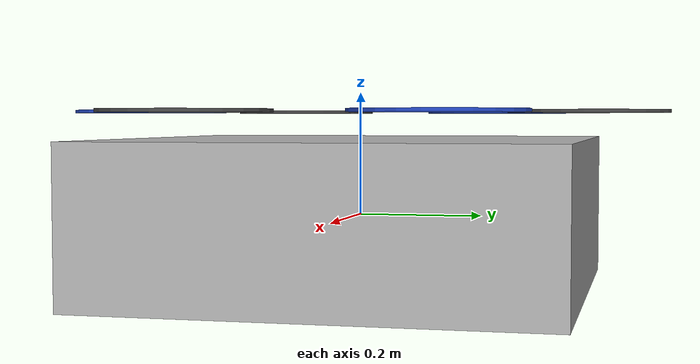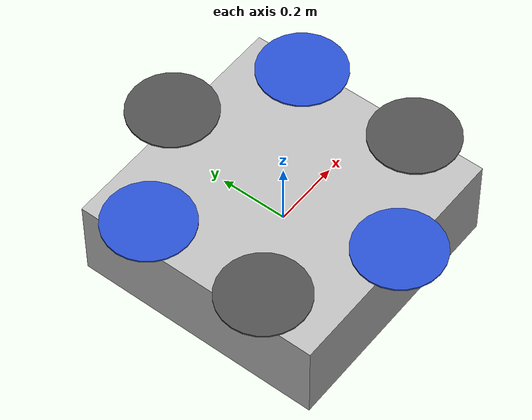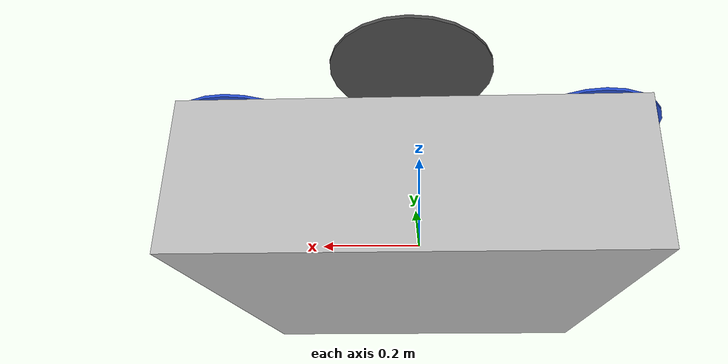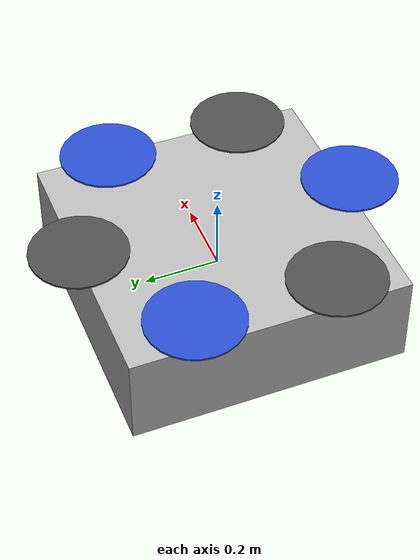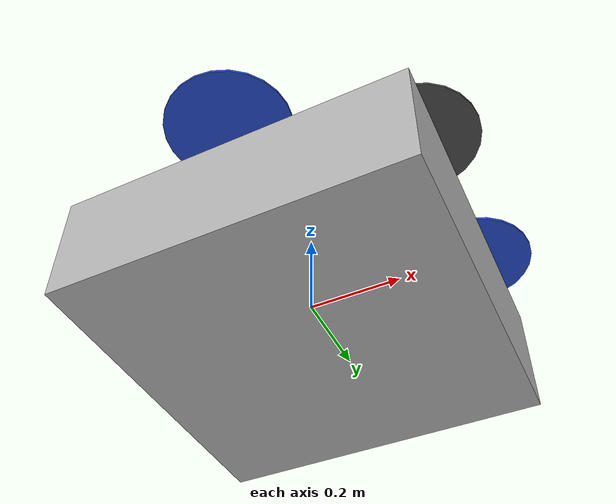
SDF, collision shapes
<?xml version='1.0'?>
<sdf version='1.5'>
  <model name='sdu_drone_mono_cam'>

    <include>
      <uri>model://sdu_drone</uri>
    </include>

    <include>
      <uri>model://sdu_stereo_cam</uri>
      <pose>0 0 0 0 0 0</pose>
    </include>

    <joint name='sensor_link' type='revolute'>
      <child>sdu_stereo_cam::link</child>
      <parent>sdu_drone::base_link</parent>
      <axis>
        <xyz>1 0 0</xyz>
        <limit>
          <lower>0</lower>
          <upper>0</upper>
          <effort>0</effort>
          <velocity>0</velocity>
        </limit>
        <dynamics>
          <spring_reference>0</spring_reference>
          <spring_stiffness>0</spring_stiffness>
        </dynamics>
        <use_parent_model_frame>1</use_parent_model_frame>
      </axis>
    </joint>

  </model>
</sdf>

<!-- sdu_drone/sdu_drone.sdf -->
<sdf version='1.7'>
  <model name='sdu_drone'>
    <!-- SDU Drone body -->
    <link name='base_link'>
      <pose>0 0 0 0 -0 0</pose>
      <inertial>
        <pose>0 0 0 0 -0 0</pose>
        <mass>1.5</mass>
        <inertia>
          <ixx>0.0762625</ixx>
          <ixy>0</ixy>
          <ixz>0</ixz>
          <iyy>0.0762625</iyy>
          <iyz>0</iyz>
          <izz>0.1369</izz>
        </inertia>
      </inertial>
      <collision name='base_link_inertia_collision'>
        <pose>0 0 0 0 -0 0</pose>
        <geometry>
          <box>
            <size>0.74 0.74 0.25</size>
          </box>
        </geometry>
        <surface>
          <contact>
            <ode>
              <min_depth>0.001</min_depth>
              <max_vel>0</max_vel>
            </ode>
          </contact>
          <friction>
            <ode/>
          </friction>
        </surface>
      </collision>
      <visual name='base_link_inertia_visual'>
        <pose>0 0 0.125 0 0 0</pose>
        <geometry>
          <mesh>
            <scale>1 1 1</scale>
            <uri>model://sdu_drone/meshes/model.dae</uri>
          </mesh>
        </geometry>
      </visual>
      <gravity>1</gravity>
      <velocity_decay/>
    </link>
    <link name='/imu_link'>
      <pose>0 0 0 0 -0 0</pose>
      <inertial>
        <pose>0 0 0 0 -0 0</pose>
        <mass>0.015</mass>
        <inertia>
          <ixx>1e-05</ixx>
          <ixy>0</ixy>
          <ixz>0</ixz>
          <iyy>1e-05</iyy>
          <iyz>0</iyz>
          <izz>1e-05</izz>
        </inertia>
      </inertial>
    </link>
    <joint name='/imu_joint' type='revolute'>
      <child>/imu_link</child>
      <parent>base_link</parent>
      <axis>
        <xyz>1 0 0</xyz>
        <limit>
          <lower>0</lower>
          <upper>0</upper>
          <effort>0</effort>
          <velocity>0</velocity>
        </limit>
        <dynamics>
          <spring_reference>0</spring_reference>
          <spring_stiffness>0</spring_stiffness>
        </dynamics>
        <use_parent_model_frame>1</use_parent_model_frame>
      </axis>
    </joint>

    <!-- Rotor 0 (CW) -->
    <link name='rotor_0'>
      <pose>0.0 -0.37 0.170 0 -0 0</pose>
      <inertial>
        <pose>0 0 0 0 -0 0</pose>
        <mass>0.005</mass>
        <inertia>
          <ixx>9.75e-07</ixx>
          <ixy>0</ixy>
          <ixz>0</ixz>
          <iyy>0.000273104</iyy>
          <iyz>0</iyz>
          <izz>0.000274004</izz>
        </inertia>
      </inertial>
      <collision name='rotor_0_collision'>
        <pose>0 0 0 0 -0 0</pose>
        <geometry>
          <cylinder>
            <length>0.005</length>
            <radius>0.128</radius>
          </cylinder>
        </geometry>
        <surface>
          <contact>
            <ode/>
          </contact>
          <friction>
            <ode/>
          </friction>
        </surface>
      </collision>
      <visual name='rotor_0_visual'>
        <pose>0 0 0 0 -0 0</pose>
        <geometry>
          <mesh>
            <scale>1.5 1.5 1.5</scale>
            <uri>model://rotors_description/meshes/iris_prop_cw.dae</uri>
          </mesh>
        </geometry>
        <material>
          <script>
            <name>Gazebo/Blue</name>
            <uri>file://media/materials/scripts/gazebo.material</uri>
          </script>
        </material>
      </visual>
      <gravity>1</gravity>
      <velocity_decay/>
    </link>
    <joint name='rotor_0_joint' type='revolute'>
      <child>rotor_0</child>
      <parent>base_link</parent>
      <axis>
        <xyz>0 0 1</xyz>
        <limit>
          <lower>-1e+16</lower>
          <upper>1e+16</upper>
        </limit>
        <dynamics>
          <spring_reference>0</spring_reference>
          <spring_stiffness>0</spring_stiffness>
        </dynamics>
        <use_parent_model_frame>1</use_parent_model_frame>
      </axis>
    </joint>

    <!-- Rotor 1 (CCW) -->
    <link name='rotor_1'>
      <pose>0 0.37 0.170 0 -0 0</pose>
      <inertial>
        <pose>0 0 0 0 -0 0</pose>
        <mass>0.005</mass>
        <inertia>
          <ixx>9.75e-07</ixx>
          <ixy>0</ixy>
          <ixz>0</ixz>
          <iyy>0.000273104</iyy>
          <iyz>0</iyz>
          <izz>0.000274004</izz>
        </inertia>
      </inertial>
      <collision name='rotor_1_collision'>
        <pose>0 0 0 0 -0 0</pose>
        <geometry>
          <cylinder>
            <length>0.005</length>
            <radius>0.128</radius>
          </cylinder>
        </geometry>
        <surface>
          <contact>
            <ode/>
          </contact>
          <friction>
            <ode/>
          </friction>
        </surface>
      </collision>
      <visual name='rotor_1_visual'>
        <pose>0 0 0 0 -0 0</pose>
        <geometry>
          <mesh>
            <scale>1.5 1.5 1.5</scale>
            <uri>model://rotors_description/meshes/iris_prop_ccw.dae</uri>
          </mesh>
        </geometry>
        <material>
          <script>
            <name>Gazebo/DarkGrey</name>
            <uri>file://media/materials/scripts/gazebo.material</uri>
          </script>
        </material>
      </visual>
      <gravity>1</gravity>
      <velocity_decay/>
    </link>
    <joint name='rotor_1_joint' type='revolute'>
      <child>rotor_1</child>
      <parent>base_link</parent>
      <axis>
        <xyz>0 0 1</xyz>
        <limit>
          <lower>-1e+16</lower>
          <upper>1e+16</upper>
        </limit>
        <dynamics>
          <spring_reference>0</spring_reference>
          <spring_stiffness>0</spring_stiffness>
        </dynamics>
        <use_parent_model_frame>1</use_parent_model_frame>
      </axis>
    </joint>

    <!-- Rotor 2 (CW) -->
    <link name='rotor_2'>
      <pose>0.320429 0.185000 0.170 0 -0 0</pose>
      <inertial>
        <pose>0 0 0 0 -0 0</pose>
        <mass>0.005</mass>
        <inertia>
          <ixx>9.75e-07</ixx>
          <ixy>0</ixy>
          <ixz>0</ixz>
          <iyy>0.000273104</iyy>
          <iyz>0</iyz>
          <izz>0.000274004</izz>
        </inertia>
      </inertial>
      <collision name='rotor_2_collision'>
        <pose>0 0 0 0 -0 0</pose>
        <geometry>
          <cylinder>
            <length>0.005</length>
            <radius>0.128</radius>
          </cylinder>
        </geometry>
        <surface>
          <contact>
            <ode/>
          </contact>
          <friction>
            <ode/>
          </friction>
        </surface>
      </collision>
      <visual name='rotor_2_visual'>
        <pose>0 0 0 0 -0 0</pose>
        <geometry>
          <mesh>
            <scale>1.5 1.5 1.5</scale>
            <uri>model://rotors_description/meshes/iris_prop_cw.dae</uri>
          </mesh>
        </geometry>
        <material>
          <script>
            <name>Gazebo/Blue</name>
            <uri>file://media/materials/scripts/gazebo.material</uri>
          </script>
        </material>
      </visual>
      <gravity>1</gravity>
      <velocity_decay/>
    </link>
    <joint name='rotor_2_joint' type='revolute'>
      <child>rotor_2</child>
      <parent>base_link</parent>
      <axis>
        <xyz>0 0 1</xyz>
        <limit>
          <lower>-1e+16</lower>
          <upper>1e+16</upper>
        </limit>
        <dynamics>
          <spring_reference>0</spring_reference>
          <spring_stiffness>0</spring_stiffness>
        </dynamics>
        <use_parent_model_frame>1</use_parent_model_frame>
      </axis>
    </joint>

    <!-- Rotor 3 (CW) -->
    <link name='rotor_3'>
      <pose>-0.320429 -0.185000 0.170 0 -0 0</pose>
      <inertial>
        <pose>0 0 0 0 -0 0</pose>
        <mass>0.005</mass>
        <inertia>
          <ixx>9.75e-07</ixx>
          <ixy>0</ixy>
          <ixz>0</ixz>
          <iyy>0.000273104</iyy>
          <iyz>0</iyz>
          <izz>0.000274004</izz>
        </inertia>
      </inertial>
      <collision name='rotor_3_collision'>
        <pose>0 0 0 0 -0 0</pose>
        <geometry>
          <cylinder>
            <length>0.005</length>
            <radius>0.128</radius>
          </cylinder>
        </geometry>
        <surface>
          <contact>
            <ode/>
          </contact>
          <friction>
            <ode/>
          </friction>
        </surface>
      </collision>
      <visual name='rotor_3_visual'>
        <pose>0 0 0 0 -0 0</pose>
        <geometry>
          <mesh>
            <scale>1.5 1.5 1.5</scale>
            <uri>model://rotors_description/meshes/iris_prop_cw.dae</uri>
          </mesh>
        </geometry>
        <material>
          <script>
            <name>Gazebo/DarkGrey</name>
            <uri>file://media/materials/scripts/gazebo.material</uri>
          </script>
        </material>
      </visual>
      <gravity>1</gravity>
      <velocity_decay/>
    </link>
    <joint name='rotor_3_joint' type='revolute'>
      <child>rotor_3</child>
      <parent>base_link</parent>
      <axis>
        <xyz>0 0 1</xyz>
        <limit>
          <lower>-1e+16</lower>
          <upper>1e+16</upper>
        </limit>
        <dynamics>
          <spring_reference>0</spring_reference>
          <spring_stiffness>0</spring_stiffness>
        </dynamics>
        <use_parent_model_frame>1</use_parent_model_frame>
      </axis>
    </joint>

    <!-- Rotor 4 (CW) -->
    <link name='rotor_4'>
      <pose>0.320429 -0.185000 0.170 0 -0 0</pose>
      <inertial>
        <pose>0 0 0 0 -0 0</pose>
        <mass>0.005</mass>
        <inertia>
          <ixx>9.75e-07</ixx>
          <ixy>0</ixy>
          <ixz>0</ixz>
          <iyy>0.000273104</iyy>
          <iyz>0</iyz>
          <izz>0.000274004</izz>
        </inertia>
      </inertial>
      <collision name='rotor_4_collision'>
        <pose>0 0 0 0 -0 0</pose>
        <geometry>
          <cylinder>
            <length>0.005</length>
            <radius>0.128</radius>
          </cylinder>
        </geometry>
        <surface>
          <contact>
            <ode/>
          </contact>
          <friction>
            <ode/>
          </friction>
        </surface>
      </collision>
      <visual name='rotor_4_visual'>
        <pose>0 0 0 0 -0 0</pose>
        <geometry>
          <mesh>
            <scale>1.5 1.5 1.5</scale>
            <uri>model://rotors_description/meshes/iris_prop_cw.dae</uri>
          </mesh>
        </geometry>
        <material>
          <script>
            <name>Gazebo/DarkGrey</name>
            <uri>file://media/materials/scripts/gazebo.material</uri>
          </script>
        </material>
      </visual>
      <gravity>1</gravity>
      <velocity_decay/>
    </link>
    <joint name='rotor_4_joint' type='revolute'>
      <child>rotor_4</child>
      <parent>base_link</parent>
      <axis>
        <xyz>0 0 1</xyz>
        <limit>
          <lower>-1e+16</lower>
          <upper>1e+16</upper>
        </limit>
        <dynamics>
          <spring_reference>0</spring_reference>
          <spring_stiffness>0</spring_stiffness>
        </dynamics>
        <use_parent_model_frame>1</use_parent_model_frame>
      </axis>
    </joint>

    <!-- Rotor 5 (CCW) -->
    <link name='rotor_5'>
      <pose>-0.320429 0.185000 0.170 0 -0 0</pose>
      <inertial>
        <pose>0 0 0 0 -0 0</pose>
        <mass>0.005</mass>
        <inertia>
          <ixx>9.75e-07</ixx>
          <ixy>0</ixy>
          <ixz>0</ixz>
          <iyy>0.000273104</iyy>
          <iyz>0</iyz>
          <izz>0.000274004</izz>
        </inertia>
      </inertial>
      <collision name='rotor_5_collision'>
        <pose>0 0 0 0 -0 0</pose>
        <geometry>
          <cylinder>
            <length>0.005</length>
            <radius>0.128</radius>
          </cylinder>
        </geometry>
        <surface>
          <contact>
            <ode/>
          </contact>
          <friction>
            <ode/>
          </friction>
        </surface>
      </collision>
      <visual name='rotor_5_visual'>
        <pose>0 0 0 0 -0 0</pose>
        <geometry>
          <mesh>
            <scale>1.5 1.5 1.5</scale>
            <uri>model://rotors_description/meshes/iris_prop_cw.dae</uri>
          </mesh>
        </geometry>
        <material>
          <script>
            <name>Gazebo/Blue</name>
            <uri>file://media/materials/scripts/gazebo.material</uri>
          </script>
        </material>
      </visual>
      <gravity>1</gravity>
      <velocity_decay/>
    </link>
    <joint name='rotor_5_joint' type='revolute'>
      <child>rotor_5</child>
      <parent>base_link</parent>
      <axis>
        <xyz>0 0 1</xyz>
        <limit>
          <lower>-1e+16</lower>
          <upper>1e+16</upper>
        </limit>
        <dynamics>
          <spring_reference>0</spring_reference>
          <spring_stiffness>0</spring_stiffness>
        </dynamics>
        <use_parent_model_frame>1</use_parent_model_frame>
      </axis>
    </joint>

    <plugin name='rosbag' filename='libgazebo_multirotor_base_plugin.so'>
      <robotNamespace/>
      <linkName>base_link</linkName>
      <rotorVelocitySlowdownSim>10</rotorVelocitySlowdownSim>
    </plugin>

        <plugin name='motor_model_0' filename='libgazebo_motor_model.so'>
          <robotNamespace/>
          <jointName>rotor_0_joint</jointName>
          <linkName>rotor_0</linkName>
          <turningDirection>cw</turningDirection>
          <timeConstantUp>0.0125</timeConstantUp>
          <timeConstantDown>0.025</timeConstantDown>
          <maxRotVelocity>1100</maxRotVelocity>
          <motorConstant>8.54858e-06</motorConstant>
          <momentConstant>0.06</momentConstant>
          <commandSubTopic>/gazebo/command/motor_speed</commandSubTopic>
          <motorNumber>0</motorNumber>
          <rotorDragCoefficient>0.000806428</rotorDragCoefficient>
          <rollingMomentCoefficient>1e-06</rollingMomentCoefficient>
          <motorSpeedPubTopic>/motor_speed/0</motorSpeedPubTopic>
          <rotorVelocitySlowdownSim>10</rotorVelocitySlowdownSim>
        </plugin>
        <plugin name='motor_model_1' filename='libgazebo_motor_model.so'>
          <robotNamespace/>
          <jointName>rotor_1_joint</jointName>
          <linkName>rotor_1</linkName>
          <turningDirection>ccw</turningDirection>
          <timeConstantUp>0.0125</timeConstantUp>
          <timeConstantDown>0.025</timeConstantDown>
          <maxRotVelocity>1100</maxRotVelocity>
          <motorConstant>8.54858e-06</motorConstant>
          <momentConstant>0.06</momentConstant>
          <commandSubTopic>/gazebo/command/motor_speed</commandSubTopic>
          <motorNumber>1</motorNumber>
          <rotorDragCoefficient>0.000806428</rotorDragCoefficient>
          <rollingMomentCoefficient>1e-06</rollingMomentCoefficient>
          <motorSpeedPubTopic>/motor_speed/1</motorSpeedPubTopic>
          <rotorVelocitySlowdownSim>10</rotorVelocitySlowdownSim>
        </plugin>
        <plugin name='motor_model_2' filename='libgazebo_motor_model.so'>
          <robotNamespace/>
          <jointName>rotor_2_joint</jointName>
          <linkName>rotor_2</linkName>
          <turningDirection>cw</turningDirection>
          <timeConstantUp>0.0125</timeConstantUp>
          <timeConstantDown>0.025</timeConstantDown>
          <maxRotVelocity>1100</maxRotVelocity>
          <motorConstant>8.54858e-06</motorConstant>
          <momentConstant>0.06</momentConstant>
          <commandSubTopic>/gazebo/command/motor_speed</commandSubTopic>
          <motorNumber>2</motorNumber>
          <rotorDragCoefficient>0.000806428</rotorDragCoefficient>
          <rollingMomentCoefficient>1e-06</rollingMomentCoefficient>
          <motorSpeedPubTopic>/motor_speed/2</motorSpeedPubTopic>
          <rotorVelocitySlowdownSim>10</rotorVelocitySlowdownSim>
        </plugin>
        <plugin name='motor_model_3' filename='libgazebo_motor_model.so'>
          <robotNamespace/>
          <jointName>rotor_3_joint</jointName>
          <linkName>rotor_3</linkName>
          <turningDirection>ccw</turningDirection>
          <timeConstantUp>0.0125</timeConstantUp>
          <timeConstantDown>0.025</timeConstantDown>
          <maxRotVelocity>1100</maxRotVelocity>
          <motorConstant>8.54858e-06</motorConstant>
          <momentConstant>0.06</momentConstant>
          <commandSubTopic>/gazebo/command/motor_speed</commandSubTopic>
          <motorNumber>3</motorNumber>
          <rotorDragCoefficient>0.000806428</rotorDragCoefficient>
          <rollingMomentCoefficient>1e-06</rollingMomentCoefficient>
          <motorSpeedPubTopic>/motor_speed/3</motorSpeedPubTopic>
          <rotorVelocitySlowdownSim>10</rotorVelocitySlowdownSim>
        </plugin>
        <plugin name='motor_model_4' filename='libgazebo_motor_model.so'>
          <robotNamespace/>
          <jointName>rotor_4_joint</jointName>
          <linkName>rotor_4</linkName>
          <turningDirection>ccw</turningDirection>
          <timeConstantUp>0.0125</timeConstantUp>
          <timeConstantDown>0.025</timeConstantDown>
          <maxRotVelocity>1100</maxRotVelocity>
          <motorConstant>8.54858e-06</motorConstant>
          <momentConstant>0.06</momentConstant>
          <commandSubTopic>/gazebo/command/motor_speed</commandSubTopic>
          <motorNumber>4</motorNumber>
          <rotorDragCoefficient>0.000806428</rotorDragCoefficient>
          <rollingMomentCoefficient>1e-06</rollingMomentCoefficient>
          <motorSpeedPubTopic>/motor_speed/3</motorSpeedPubTopic>
          <rotorVelocitySlowdownSim>10</rotorVelocitySlowdownSim>
        </plugin>
        <plugin name='motor_model_5' filename='libgazebo_motor_model.so'>
          <robotNamespace/>
          <jointName>rotor_5_joint</jointName>
          <linkName>rotor_5</linkName>
          <turningDirection>cw</turningDirection>
          <timeConstantUp>0.0125</timeConstantUp>
          <timeConstantDown>0.025</timeConstantDown>
          <maxRotVelocity>1100</maxRotVelocity>
          <motorConstant>8.54858e-06</motorConstant>
          <momentConstant>0.06</momentConstant>
          <commandSubTopic>/gazebo/command/motor_speed</commandSubTopic>
          <motorNumber>5</motorNumber>
          <rotorDragCoefficient>0.000806428</rotorDragCoefficient>
          <rollingMomentCoefficient>1e-06</rollingMomentCoefficient>
          <motorSpeedPubTopic>/motor_speed/3</motorSpeedPubTopic>
          <rotorVelocitySlowdownSim>10</rotorVelocitySlowdownSim>
        </plugin>

    <model name='gps0'>
      <link name='link'>
        <pose>0 0 0.125 0 -0 0</pose>
        <inertial>
          <pose>0 0 0 0 -0 0</pose>
          <mass>0.01</mass>
          <inertia>
            <ixx>2.1733e-06</ixx>
            <ixy>0</ixy>
            <ixz>0</ixz>
            <iyy>2.1733e-06</iyy>
            <iyz>0</iyz>
            <izz>1.8e-07</izz>
          </inertia>
        </inertial>
        <visual name='visual'>
          <geometry>
            <cylinder>
              <radius>0.01</radius>
              <length>0.002</length>
            </cylinder>
          </geometry>
          <material>
            <script>
              <name>Gazebo/Black</name>
              <uri>__default__</uri>
            </script>
          </material>
        </visual>
        <sensor name='gps' type='gps'>
          <pose>0 0 0 0 -0 0</pose>
          <plugin name='gps_plugin' filename='libgazebo_gps_plugin.so'>
            <robotNamespace/>
            <gpsNoise>1</gpsNoise>
            <gpsXYRandomWalk>2.0</gpsXYRandomWalk>
            <gpsZRandomWalk>4.0</gpsZRandomWalk>
            <gpsXYNoiseDensity>0.0002</gpsXYNoiseDensity>
            <gpsZNoiseDensity>0.0004</gpsZNoiseDensity>
            <gpsVXYNoiseDensity>0.2</gpsVXYNoiseDensity>
            <gpsVZNoiseDensity>0.4</gpsVZNoiseDensity>
          </plugin>
        </sensor>
      </link>
    </model>
    <joint name='gps0_joint' type='fixed'>
      <parent>base_link</parent>
      <child>gps0::link</child>
    </joint>
    <plugin name='groundtruth_plugin' filename='libgazebo_groundtruth_plugin.so'>
      <robotNamespace/>
    </plugin>
    <plugin name='magnetometer_plugin' filename='libgazebo_magnetometer_plugin.so'>
      <robotNamespace/>
      <pubRate>20</pubRate>
      <noiseDensity>0.0004</noiseDensity>
      <randomWalk>6.4e-06</randomWalk>
      <biasCorrelationTime>600</biasCorrelationTime>
      <magTopic>/mag</magTopic>
    </plugin>
    <plugin name='barometer_plugin' filename='libgazebo_barometer_plugin.so'>
      <robotNamespace/>
      <pubRate>10</pubRate>
      <baroTopic>/baro</baroTopic>
    </plugin>

    <plugin name='parachute_plugin' filename='libgazebo_parachute_plugin.so'>
      <robotNamespace/>
      <commandSubTopic>/gazebo/command/motor_speed</commandSubTopic>
      <motorNumber>6</motorNumber>
    </plugin>

    <plugin name='mavlink_interface' filename='libgazebo_mavlink_interface.so'>
      <robotNamespace></robotNamespace>
      <imuSubTopic>/imu</imuSubTopic>
      <magSubTopic>/mag</magSubTopic>
      <baroSubTopic>/baro</baroSubTopic>
      <mavlink_addr>INADDR_ANY</mavlink_addr>
      <mavlink_udp_port>14560</mavlink_udp_port>
      <mavlink_tcp_port>4560</mavlink_tcp_port>
      <serialEnabled>false</serialEnabled>
      <serialDevice>/dev/ttyACM0</serialDevice>
      <baudRate>921600</baudRate>
      <qgc_addr>INADDR_ANY</qgc_addr>
      <qgc_udp_port>14550</qgc_udp_port>
      <sdk_addr>INADDR_ANY</sdk_addr>
      <sdk_udp_port>14540</sdk_udp_port>
      <hil_mode>0</hil_mode>
      <hil_state_level>0</hil_state_level>
      <vehicle_is_tailsitter>0</vehicle_is_tailsitter>
      <send_vision_estimation>1</send_vision_estimation>
      <send_odometry>0</send_odometry>
      <enable_lockstep>1</enable_lockstep>
      <use_tcp>1</use_tcp>
      <motorSpeedCommandPubTopic>/gazebo/command/motor_speed</motorSpeedCommandPubTopic>
      <control_channels>
        <channel name="rotor0">
          <input_index>0</input_index>
          <input_offset>0</input_offset>
          <input_scaling>1500</input_scaling>
          <zero_position_disarmed>0</zero_position_disarmed>
          <zero_position_armed>100</zero_position_armed>
          <joint_control_type>velocity</joint_control_type>
          <joint_name>rotor_0_joint</joint_name>
        </channel>
        <channel name="rotor1">
          <input_index>1</input_index>
          <input_offset>0</input_offset>
          <input_scaling>1500</input_scaling>
          <zero_position_disarmed>0</zero_position_disarmed>
          <zero_position_armed>100</zero_position_armed>
          <joint_control_type>velocity</joint_control_type>
          <joint_name>rotor_1_joint</joint_name>
        </channel>
        <channel name="rotor2">
          <input_index>2</input_index>
          <input_offset>0</input_offset>
          <input_scaling>1500</input_scaling>
          <zero_position_disarmed>0</zero_position_disarmed>
          <zero_position_armed>100</zero_position_armed>
          <joint_control_type>velocity</joint_control_type>
          <joint_name>rotor_2_joint</joint_name>
        </channel>
        <channel name="rotor3">
          <input_index>3</input_index>
          <input_offset>0</input_offset>
          <input_scaling>1500</input_scaling>
          <zero_position_disarmed>0</zero_position_disarmed>
          <zero_position_armed>100</zero_position_armed>
          <joint_control_type>velocity</joint_control_type>
          <joint_name>rotor_3_joint</joint_name>
        </channel>
        <channel name="rotor4">
          <input_index>4</input_index>
          <input_offset>0</input_offset>
          <input_scaling>1500</input_scaling>
          <zero_position_disarmed>0</zero_position_disarmed>
          <zero_position_armed>100</zero_position_armed>
          <joint_control_type>velocity</joint_control_type>
          <joint_name>rotor_4_joint</joint_name>
        </channel>
        <channel name="rotor5">
          <input_index>5</input_index>
          <input_offset>0</input_offset>
          <input_scaling>1500</input_scaling>
          <zero_position_disarmed>0</zero_position_disarmed>
          <zero_position_armed>100</zero_position_armed>
          <joint_control_type>velocity</joint_control_type>
          <joint_name>rotor_5_joint</joint_name>
        </channel>
        <channel name='aux1'>
          <input_index>6</input_index>
          <input_offset>0</input_offset>
          <input_scaling>1000</input_scaling>
          <zero_position_disarmed>0</zero_position_disarmed>
          <zero_position_armed>100</zero_position_armed>
          <joint_control_type>velocity</joint_control_type>
        </channel>
      </control_channels>
    </plugin>
    <static>0</static>
    <plugin name='gazebo_imu_plugin' filename='libgazebo_imu_plugin.so'>
      <robotNamespace></robotNamespace>
      <linkName>/imu_link</linkName>
      <imuTopic>/imu</imuTopic>
      <gyroscopeNoiseDensity>0.0003394</gyroscopeNoiseDensity>
      <gyroscopeRandomWalk>3.8785e-05</gyroscopeRandomWalk>
      <gyroscopeBiasCorrelationTime>1000.0</gyroscopeBiasCorrelationTime>
      <gyroscopeTurnOnBiasSigma>0.0087</gyroscopeTurnOnBiasSigma>
      <accelerometerNoiseDensity>0.004</accelerometerNoiseDensity>
      <accelerometerRandomWalk>0.006</accelerometerRandomWalk>
      <accelerometerBiasCorrelationTime>300.0</accelerometerBiasCorrelationTime>
      <accelerometerTurnOnBiasSigma>0.196</accelerometerTurnOnBiasSigma>
    </plugin>

</model>
</sdf>

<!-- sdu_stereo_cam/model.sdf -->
<sdf version='1.6'>
    <model name='sdu_stereo_cam'>
    <pose>0 0 0 0 0 0</pose>
      <link name='link'>
        <inertial>
          <mass>0.015</mass>
          <inertia>
            <ixx>4.15e-6</ixx>
          <ixy>0</ixy>
          <ixz>0</ixz>
          <iyy>2.407e-6</iyy>
          <iyz>0</iyz>
          <izz>2.407e-6</izz>
          </inertia>
        </inertial>
        <collision name='collision'>
          <geometry>
            <box>
              <size>0.01 0.01 0.01</size>
            </box>
          </geometry>
          <max_contacts>10</max_contacts>
          <surface>
            <contact>
              <ode/>
            </contact>
            <bounce/>
            <friction>
              <ode/>
            </friction>
          </surface>
        </collision>
        <visual name='visual'>
          <geometry>
            <box>
              <size>0.01 0.01 0.01</size>
            </box>
          </geometry>
        </visual>
        <sensor type="multicamera" name="stereo_camera">
          <update_rate>7.0</update_rate>
          <camera name="left">
            <pose>0.1 0.035 0 0 0 0</pose>
            <horizontal_fov>1.3962634</horizontal_fov>
            <image>
              <width>400</width>
              <height>400</height>
              <format>R8G8B8</format>
            </image>
            <clip>
              <near>0.02</near>
              <far>300</far>
            </clip>
            <noise>
              <type>gaussian</type>
              <mean>0.0</mean>
              <stddev>0.007</stddev>
            </noise>
          </camera>
          <camera name="right">
            <pose>0.1 -0.035 0 0 0 0</pose>
            <horizontal_fov>1.3962634</horizontal_fov>
            <image>
              <width>400</width>
              <height>400</height>
              <format>R8G8B8</format>
            </image>
            <clip>
              <near>0.02</near>
              <far>300</far>
            </clip>
            <noise>
              <type>gaussian</type>
              <mean>0.0</mean>
              <stddev>0.007</stddev>
            </noise>
          </camera>
          <plugin name="stereo_camera_controller" filename="libgazebo_ros_multicamera.so">
            <alwaysOn>true</alwaysOn>
            <updateRate>0.0</updateRate>
            <cameraName>stereo</cameraName>
            <imageTopicName>image_raw</imageTopicName>
            <cameraInfoTopicName>camera_info</cameraInfoTopicName>
            <frameName>camera_link</frameName>
            <hackBaseline>0.07</hackBaseline>
            <distortionK1>0.0</distortionK1>
            <distortionK2>0.0</distortionK2>
            <distortionK3>0.0</distortionK3>
            <distortionT1>0.0</distortionT1>
            <distortionT2>0.0</distortionT2>
          </plugin>
        </sensor>
        <self_collide>0</self_collide>
        <kinematic>0</kinematic>
      </link>
  </model>
</sdf>
